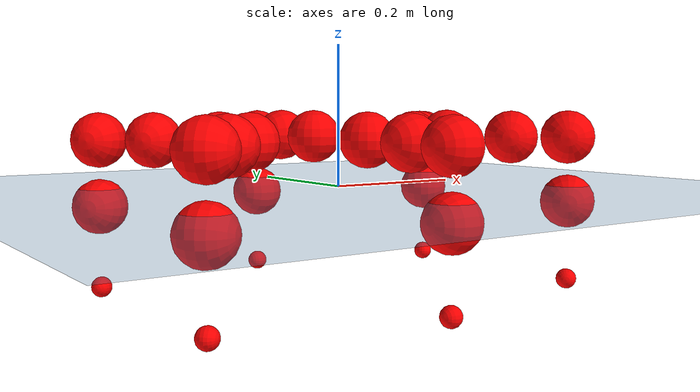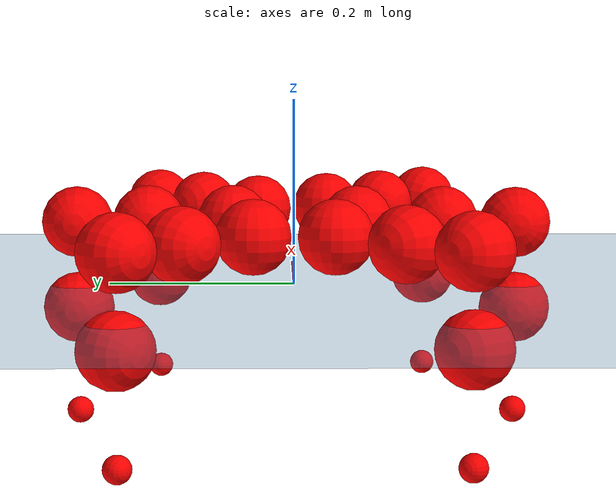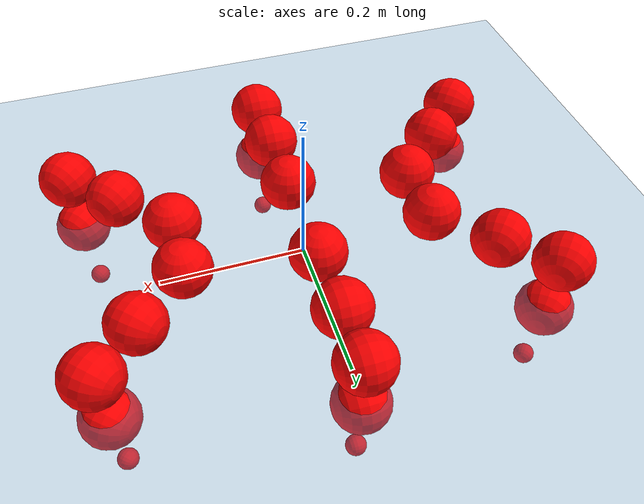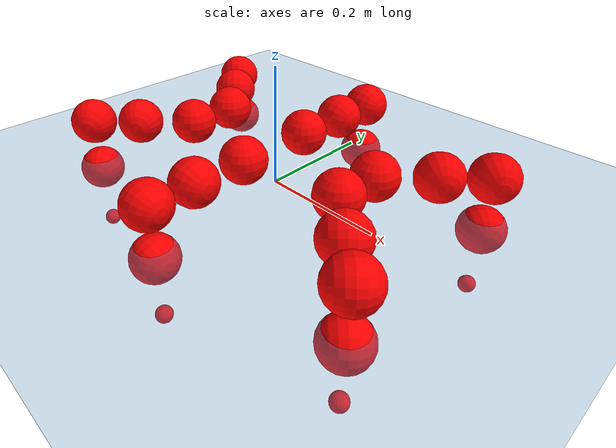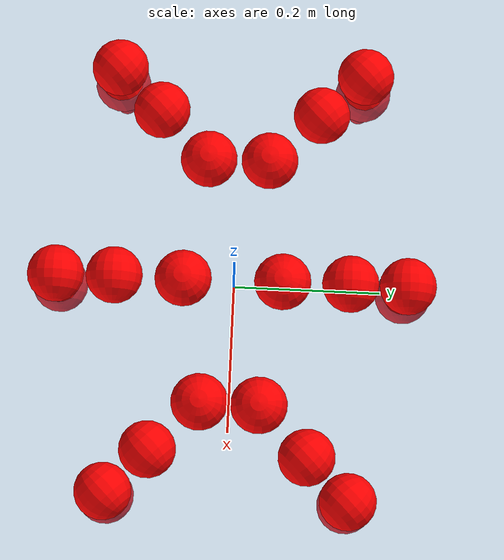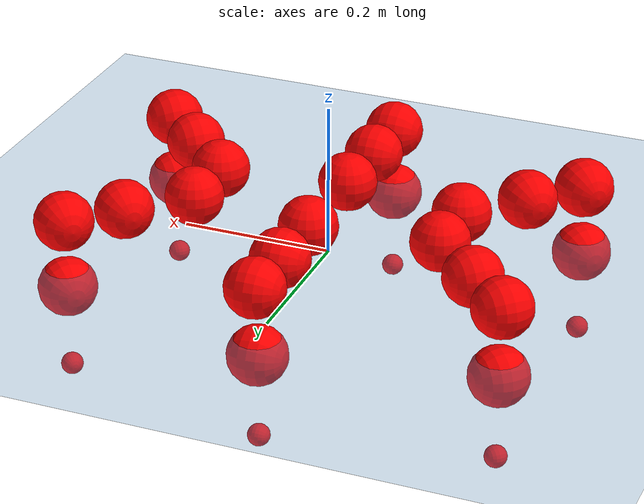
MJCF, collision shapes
<mujoco model="Golem">
  <compiler angle="radian" assetdir="assets" balanceinertia="true" inertiafromgeom="false"/>

  <option timestep="0.005" density="1.2" viscosity="2e-05"/>

  <size nkey="1"/>

  <visual>
    <quality shadowsize="8192"/>
    <map shadowclip="0.5"/>
  </visual>

  <default>
    <default class="/">
      <joint armature="0.01" damping="0.01" frictionloss="0.01"/>
      <geom contype="0" conaffinity="0" group="1" solref="-1000 -80"/>
      <site size="0.01 0.005 0.005" group="5"/>
      <general forcelimited="true" biastype="affine" gainprm="25" biasprm="0 -25 -0.5"/>
      <default class="visual">
        <geom type="mesh" group="2"/>
      </default>
      <default class="collision">
        <geom group="3"/>
      </default>
      <default class="foot">
        <geom size="0.01 0 0" condim="6" group="4" priority="1" solimp="0.015 1 0.01"/>
      </default>
      <default class="reward_collision_sphere">
        <geom group="5" rgba="1 0 0 1"/>
      </default>
    </default>
  </default>

  <asset>
    <texture type="skybox" colorspace="auto" name="//unnamed_texture_0" builtin="gradient" rgb1="0.95 0.95 0.95" rgb2="0.95 0.95 0.95" width="100" height="600"/>
    <texture type="2d" colorspace="auto" name="texplane" builtin="checker" rgb1="0.345 0.575 0.748" rgb2="0.345 0.575 0.748" markrgb="1 1 1" width="512" height="512"/>
    <material name="MatPlane" class="/" texture="texplane" texuniform="true" texrepeat="2 2" specular="0.9"/>
    <mesh name="body" class="/" file="body.stl" scale="0.001 0.001 0.001"/>
    <mesh name="coxa" class="/" file="coxa.stl" scale="0.001 0.001 0.001"/>
    <mesh name="femur" class="/" file="femur.stl" scale="0.001 0.001 0.001"/>
    <mesh name="tibia" class="/" file="tibia.stl" scale="0.001 0.001 0.001"/>
    <mesh name="tarsus" class="/" file="tarsus.stl" scale="0.001 0.001 0.001"/>
  </asset>

  <worldbody>
    <geom name="floor" class="/" size="100 100 0.125" type="plane" group="0" material="MatPlane"/>
    <light name="toplight_shadow" class="/" pos="0 0 5" dir="0.0990148 0.0990148 -0.990148" type="directional" ambient="0.04 0.04 0.04" diffuse="0.55 0.55 0.55" specular="0.12 0.12 0.12"/>
    <light name="toplight_fill" class="/" pos="0 0 5" dir="0.0990148 0.0990148 -0.990148" type="directional" castshadow="false" ambient="0.04 0.04 0.04" diffuse="0.3 0.3 0.3" specular="0.08 0.08 0.08"/>
    <body name="trunk" pos="0.00118468 -0.000791356 -0.000915538" quat="1 3.2345e-05 1.85653e-06 -9.27201e-06">
      <inertial pos="0.000351465 0.000143093 -0.00343246" quat="0.999999 2.08118e-05 0.000952623 -0.00129464" mass="3.20819" diaginertia="0.0130185 0.00222723 0.0147721"/>
      <joint name="//unnamed_joint_0" type="free"/>
      <geom name="//unnamed_geom_1" class="/" pos="0 0 0.0692768" quat="1 0 0 0" type="mesh" rgba="0.9 0.9 0.9 1" mesh="body"/>
      <site name="imu" class="/" pos="0.141256 0.00320088 0.106519" size="0.00960437"/>
      <camera name="track" class="/" pos="0 -1.48856 0" quat="0.707107 0.707107 0 0" mode="trackcom"/>
      <camera name="ego_camera" class="/" pos="0.137096 0 0.108245" quat="-0.5 -0.5 0.5 0.5"/>
      <body name="coxa_RR" pos="-0.187334 -0.0625585 0.0690228" quat="0.382739 0.000457075 -7.4827e-05 -0.923856">
        <inertial pos="-0.000195467 -0.00138018 0.00153894" quat="0.999999 -0.00031402 -0.000255568 -0.00163578" mass="0.174862" diaginertia="0.0131737 0.00230418 0.0149475"/>
        <joint name="coxa_joint_RR" class="/" pos="0 0 0" axis="0.00267201 -0.00596253 -0.999979" range="-3.13644 3.14172" armature="0.00943356" damping="0.00173966" frictionloss="0.00959525"/>
        <geom name="//unnamed_geom_2" class="/" type="mesh" rgba="0.2 0.2 0.2 1" mesh="coxa"/>
        <geom name="//unnamed_geom_3" class="reward_collision_sphere" size="0.0384175" pos="-0.0316374 0 0"/>
        <body name="femur_RR" pos="0.0619886 0.000919857 -6.41759e-05" quat="0.500181 -0.499983 0.499898 0.499939">
          <inertial pos="0.000984717 0.000714784 0.00023303" quat="0.999998 -0.000120093 -0.0020917 -2.79698e-05" mass="0.17772" diaginertia="0.013059 0.00228056 0.0152123"/>
          <joint name="femur_joint_RR" class="/" pos="0 0 0" axis="-0.00201851 0.00102249 -0.999997" range="-3.15121 3.14652" armature="0.00965058" damping="0" frictionloss="0.00976442"/>
          <geom name="//unnamed_geom_4" class="/" type="mesh" rgba="0.9 0.9 0.9 1" mesh="femur"/>
          <geom name="//unnamed_geom_5" class="reward_collision_sphere" size="0.0384175"/>
          <body name="tibia_RR" pos="0.000266749 -0.082265 0.00191612" quat="-3.4824e-05 1 -0.000237397 0.000522177">
            <inertial pos="-0.000521997 6.12929e-06 0.000258699" quat="0.999999 -0.000335379 0.00145429 -0.000354938" mass="0.17895" diaginertia="0.0131128 0.00231129 0.015131"/>
            <joint name="tibia_joint_RR" class="/" pos="0 0 0" axis="-0.00052134 -0.00124147 0.999999" range="-3.15824 3.12409" armature="0.00936405" damping="0.00252572" frictionloss="0.00958425"/>
            <geom name="//unnamed_geom_6" class="/" type="mesh" rgba="0.2 0.2 0.2 1" mesh="tibia"/>
            <geom name="//unnamed_geom_7" class="reward_collision_sphere" size="0.0384175"/>
            <body name="tarsus_RR" pos="0.0927748 0.000886333 0.000277163" quat="1 -0.000121432 -5.78154e-05 -5.88209e-05">
              <inertial pos="0.0651163 0.000369009 -0.00102204" quat="0.50002 0.499968 0.499844 0.500167" mass="0.177171" diaginertia="0.0129977 0.00225302 0.0147961"/>
              <joint name="tarsus_joint_RR" class="/" pos="0 0 0" axis="0.00838342 0.00406877 0.999957" stiffness="0.00282749" range="-3.14866 3.12616" armature="0.00968431" damping="0.0416118" frictionloss="0.0100671"/>
              <geom name="//unnamed_geom_8" class="/" type="mesh" rgba="0.9 0.9 0.9 1" mesh="tarsus"/>
              <geom name="foot_1" class="foot" size="0.00937729" pos="0.118113 0 0" quat="0 -0.707107 0 0.707107"/>
              <geom name="//unnamed_geom_10" class="reward_collision_sphere" size="0.0384175"/>
              <geom name="//unnamed_geom_11" class="reward_collision_sphere" size="0.0144066" pos="0.113367 0 0"/>
              <site name="foot_1" class="foot" pos="0.118113 0 0" quat="0 -0.707107 0 0.707107" size="0.00960437"/>
            </body>
          </body>
        </body>
      </body>
      <body name="coxa_RM" pos="-3.21239e-05 -0.0994174 0.0691475" quat="0.707305 -1.148e-05 0.00017297 -0.706908">
        <inertial pos="-4.2978e-05 8.25212e-05 0.00161112" quat="0.999989 0.0030262 -0.000431329 0.00364769" mass="0.179578" diaginertia="0.0132195 0.00225021 0.0147934"/>
        <joint name="coxa_joint_RM" class="/" pos="0 0 0" axis="0.00237382 0.00292591 -0.999993" range="-3.12276 3.14708" armature="0.00945429" damping="0.00842818" frictionloss="0.00875751"/>
        <geom name="//unnamed_geom_12" class="/" type="mesh" rgba="0.2 0.2 0.2 1" mesh="coxa"/>
        <geom name="//unnamed_geom_13" class="reward_collision_sphere" size="0.0384175" pos="-0.0316374 0 0"/>
        <body name="femur_RM" pos="0.0611404 -0.000333269 -0.000380522" quat="0.499602 -0.500151 0.500266 0.49998">
          <inertial pos="9.69521e-05 0.000692395 2.30432e-05" quat="0.999994 -0.00203906 -0.00209437 -0.00169701" mass="0.18104" diaginertia="0.0132724 0.00231919 0.0151634"/>
          <joint name="femur_joint_RM" class="/" pos="0 0 0" axis="0.00412499 -0.00156218 -0.99999" range="-3.13509 3.14156" armature="0.010072" damping="0.00917932" frictionloss="0.00960667"/>
          <geom name="//unnamed_geom_14" class="/" type="mesh" rgba="0.9 0.9 0.9 1" mesh="femur"/>
          <geom name="//unnamed_geom_15" class="reward_collision_sphere" size="0.0384175"/>
          <body name="tibia_RM" pos="0.00104761 -0.0789137 0.000759063" quat="8.84899e-05 1 -1.06349e-06 -0.000146179">
            <inertial pos="-0.000381192 -0.00152536 -0.00035536" quat="0.999994 -0.00347467 0.000886357 -0.000299065" mass="0.177493" diaginertia="0.0131795 0.00234782 0.0149024"/>
            <joint name="tibia_joint_RM" class="/" pos="0 0 0" axis="-0.000192565 3.07193e-05 1" range="-3.15432 3.17374" armature="0.00960157" damping="0.0118733" frictionloss="0.00966404"/>
            <geom name="//unnamed_geom_16" class="/" type="mesh" rgba="0.2 0.2 0.2 1" mesh="tibia"/>
            <geom name="//unnamed_geom_17" class="reward_collision_sphere" size="0.0384175"/>
            <body name="tarsus_RM" pos="0.0927599 0.000156394 1.17884e-05" quat="1 2.11604e-05 2.71039e-05 -2.27858e-05">
              <inertial pos="0.0632707 0.000928559 0.000207386" quat="0.503514 0.497982 0.502807 0.495654" mass="0.179757" diaginertia="0.0129228 0.00230267 0.0148292"/>
              <joint name="tarsus_joint_RM" class="/" pos="0 0 0" axis="-0.000186817 0.000931901 1" range="-3.15211 3.14307" armature="0.0091485" damping="0.00744596" frictionloss="0.00953568"/>
              <geom name="//unnamed_geom_18" class="/" type="mesh" rgba="0.9 0.9 0.9 1" mesh="tarsus"/>
              <geom name="foot_2" class="foot" size="0.00955972" pos="0.118113 0 0" quat="0 -0.707107 0 0.707107"/>
              <geom name="//unnamed_geom_20" class="reward_collision_sphere" size="0.0384175"/>
              <geom name="//unnamed_geom_21" class="reward_collision_sphere" size="0.0144066" pos="0.113367 0 0"/>
              <site name="foot_2" class="foot" pos="0.118113 0 0" quat="0 -0.707107 0 0.707107" size="0.00960437"/>
            </body>
          </body>
        </body>
      </body>
      <body name="coxa_RF" pos="0.188253 -0.060709 0.0707697" quat="0.923766 -0.000115793 -3.28955e-05 -0.382958">
        <inertial pos="0.000515587 -0.000959693 -0.00028284" quat="1 -0.000435836 -0.000180115 6.72211e-05" mass="0.178543" diaginertia="0.0130455 0.00227723 0.0151223"/>
        <joint name="coxa_joint_RF" class="/" pos="0 0 0" axis="0.0028664 -0.00200646 -0.999994" range="-3.14544 3.13823" armature="0.00979765" damping="0.0143413" frictionloss="0.00959512"/>
        <geom name="//unnamed_geom_22" class="/" type="mesh" rgba="0.2 0.2 0.2 1" mesh="coxa"/>
        <geom name="//unnamed_geom_23" class="reward_collision_sphere" size="0.0384175" pos="-0.0316374 0 0"/>
        <body name="femur_RF" pos="0.0619359 -0.00011548 -0.00149539" quat="0.499907 -0.499839 0.500099 0.500156">
          <inertial pos="-0.000738386 0.000379584 -0.000363836" quat="0.999989 -0.00408957 0.00127806 0.00163379" mass="0.179501" diaginertia="0.0130417 0.00233248 0.0152131"/>
          <joint name="femur_joint_RF" class="/" pos="0 0 0" axis="-0.000157584 0.000527786 -1" range="-3.16536 3.12877" armature="0.00935403" damping="0.0104816" frictionloss="0.00960918"/>
          <geom name="//unnamed_geom_24" class="/" type="mesh" rgba="0.9 0.9 0.9 1" mesh="femur"/>
          <geom name="//unnamed_geom_25" class="reward_collision_sphere" size="0.0384175"/>
          <body name="tibia_RF" pos="-0.000572878 -0.0804503 0.00121927" quat="0.000103326 1 1.24886e-05 -1.12365e-05">
            <inertial pos="-0.0014211 0.000489737 -0.000178494" quat="1 -1.9343e-07 6.22174e-05 -0.000431222" mass="0.179785" diaginertia="0.0132115 0.00227116 0.0148881"/>
            <joint name="tibia_joint_RF" class="/" pos="0 0 0" axis="0.002687 0.00422063 0.999987" range="-3.13755 3.11077" armature="0.00992002" damping="0.00984995" frictionloss="0.00960503"/>
            <geom name="//unnamed_geom_26" class="/" type="mesh" rgba="0.2 0.2 0.2 1" mesh="tibia"/>
            <geom name="//unnamed_geom_27" class="reward_collision_sphere" size="0.0384175"/>
            <body name="tarsus_RF" pos="0.0928266 0.00080051 0.0007742" quat="1 0.000225992 0.000232652 0.000499347">
              <inertial pos="0.0631708 0.000427057 -0.000108012" quat="0.501061 0.498949 0.499879 0.500109" mass="0.176425" diaginertia="0.0130997 0.00227227 0.0146918"/>
              <joint name="tarsus_joint_RF" class="/" pos="0 0 0" axis="-2.63024e-05 0.000354493 1" range="-3.12288 3.13822" armature="0.00922931" damping="0" frictionloss="0.0100609"/>
              <geom name="//unnamed_geom_28" class="/" type="mesh" rgba="0.9 0.9 0.9 1" mesh="tarsus"/>
              <geom name="foot_3" class="foot" size="0.00953221" pos="0.118113 0 0" quat="0 -0.707107 0 0.707107"/>
              <geom name="//unnamed_geom_30" class="reward_collision_sphere" size="0.0384175"/>
              <geom name="//unnamed_geom_31" class="reward_collision_sphere" size="0.0144066" pos="0.113367 0 0"/>
              <site name="foot_3" class="foot" pos="0.118113 0 0" quat="0 -0.707107 0 0.707107" size="0.00960437"/>
            </body>
          </body>
        </body>
      </body>
      <body name="coxa_LR" pos="-0.188377 0.0645816 0.0691837" quat="0.382692 -2.9437e-06 3.73988e-06 0.923876">
        <inertial pos="-0.000819853 -0.00116995 -0.00100926" quat="0.999977 -0.000349304 0.00386156 -0.00558814" mass="0.177621" diaginertia="0.0129483 0.00232511 0.0147175"/>
        <joint name="coxa_joint_LR" class="/" pos="0 0 0" axis="0.00746879 0.00442644 -0.999962" range="-3.13463 3.15688" armature="0.00999168" damping="0.0117447" frictionloss="0.00953392"/>
        <geom name="//unnamed_geom_32" class="/" type="mesh" rgba="0.2 0.2 0.2 1" mesh="coxa"/>
        <geom name="//unnamed_geom_33" class="reward_collision_sphere" size="0.0384175" pos="-0.0316374 0 0"/>
        <body name="femur_LR" pos="0.0633625 -0.00148516 -0.0010795" quat="0.500007 -0.499992 0.500058 0.499944">
          <inertial pos="0.000592701 0.000120723 -0.000134078" quat="0.99999 0.00292613 -0.00278424 -0.00182298" mass="0.177023" diaginertia="0.0130282 0.00228244 0.014798"/>
          <joint name="femur_joint_LR" class="/" pos="0 0 0" axis="-0.00169308 0.00119646 0.999998" range="-3.14695 3.13892" armature="0.00974397" damping="0.00959394" frictionloss="0.00887411"/>
          <geom name="//unnamed_geom_34" class="/" type="mesh" rgba="0.9 0.9 0.9 1" mesh="femur"/>
          <geom name="//unnamed_geom_35" class="reward_collision_sphere" size="0.0384175"/>
          <body name="tibia_LR" pos="0.000441306 -0.0809679 -0.000984577" quat="0.000352615 1 0.000234385 -0.000187326">
            <inertial pos="-0.000275813 -5.54968e-05 0.000150615" quat="0.999997 -0.00104656 -0.000663421 0.00217854" mass="0.173875" diaginertia="0.0128564 0.00226483 0.0146001"/>
            <joint name="tibia_joint_LR" class="/" pos="0 0 0" axis="0.00207273 0.00623932 -0.999978" range="-3.12064 3.13666" armature="0.00955024" damping="0.00663875" frictionloss="0.00963849"/>
            <geom name="//unnamed_geom_36" class="/" type="mesh" rgba="0.2 0.2 0.2 1" mesh="tibia"/>
            <geom name="//unnamed_geom_37" class="reward_collision_sphere" size="0.0384175"/>
            <body name="tarsus_LR" pos="0.0927915 0.000313238 0.0015363" quat="1 -4.24404e-05 2.60861e-05 -0.000612481">
              <inertial pos="0.0654034 0.000158108 -0.00134083" quat="0.500807 0.499499 0.499539 0.500154" mass="0.177453" diaginertia="0.0129929 0.00227633 0.0147538"/>
              <joint name="tarsus_joint_LR" class="/" pos="0 0 0" axis="1.07893e-06 9.74561e-06 -1" range="-3.14688 3.13065" armature="0.00974684" damping="0.00141524" frictionloss="0.00928301"/>
              <geom name="//unnamed_geom_38" class="/" type="mesh" rgba="0.9 0.9 0.9 1" mesh="tarsus"/>
              <geom name="foot_4" class="foot" size="0.00915553" pos="0.118113 0 0" quat="0.707107 0 -0.707107 0"/>
              <geom name="//unnamed_geom_40" class="reward_collision_sphere" size="0.0384175"/>
              <geom name="//unnamed_geom_41" class="reward_collision_sphere" size="0.0144066" pos="0.113367 0 0"/>
              <site name="foot_4" class="foot" pos="0.118113 0 0" quat="0.707107 0 -0.707107 0" size="0.00960437"/>
            </body>
          </body>
        </body>
      </body>
      <body name="coxa_LM" pos="-0.000602383 0.0978012 0.069976" quat="0.706997 0.000255736 0.000137478 0.707216">
        <inertial pos="1.57809e-05 0.000714781 0.00105941" quat="0.999995 -0.000774416 0.00155834 -0.00252699" mass="0.178614" diaginertia="0.0133062 0.002318 0.0149914"/>
        <joint name="coxa_joint_LM" class="/" pos="0 0 0" axis="0.00100398 0.00086595 -0.999999" range="-3.13144 3.13831" armature="0.00914745" damping="0.00665321" frictionloss="0.00965901"/>
        <geom name="//unnamed_geom_42" class="/" type="mesh" rgba="0.2 0.2 0.2 1" mesh="coxa"/>
        <geom name="//unnamed_geom_43" class="reward_collision_sphere" size="0.0384175" pos="-0.0316374 0 0"/>
        <body name="femur_LM" pos="0.0597382 0.000851412 -0.000119969" quat="0.500032 -0.500109 0.499716 0.500143">
          <inertial pos="-0.00108471 -0.000529185 0.00159277" quat="0.999983 -0.00458088 0.00127687 0.00327951" mass="0.176665" diaginertia="0.0128613 0.00222918 0.0146828"/>
          <joint name="femur_joint_LM" class="/" pos="0 0 0" axis="0.000145503 -0.000433331 1" range="-3.1401 3.13591" armature="0.00923551" damping="0.00320953" frictionloss="0.00965551"/>
          <geom name="//unnamed_geom_44" class="/" type="mesh" rgba="0.9 0.9 0.9 1" mesh="femur"/>
          <geom name="//unnamed_geom_45" class="reward_collision_sphere" size="0.0384175"/>
          <body name="tibia_LM" pos="0.00120002 -0.0772583 0.000159197" quat="0.000597559 1 0.000552893 0.000277588">
            <inertial pos="0.000208982 -0.00229155 -0.000615949" quat="0.999996 0.000213104 0.00211782 -0.00181643" mass="0.178787" diaginertia="0.0129451 0.00230517 0.0147511"/>
            <joint name="tibia_joint_LM" class="/" pos="0 0 0" axis="-0.000655269 0.000398432 -1" range="-3.13603 3.13119" armature="0.00995961" damping="0" frictionloss="0.0100472"/>
            <geom name="//unnamed_geom_46" class="/" type="mesh" rgba="0.2 0.2 0.2 1" mesh="tibia"/>
            <geom name="//unnamed_geom_47" class="reward_collision_sphere" size="0.0384175"/>
            <body name="tarsus_LM" pos="0.0929477 -0.00079021 -0.00138757" quat="1 -0.00014476 -0.000724374 0.000376683">
              <inertial pos="0.0640311 0.000498176 0.000857164" quat="0.500153 0.500082 0.499963 0.499803" mass="0.172715" diaginertia="0.0129241 0.0022333 0.0145382"/>
              <joint name="tarsus_joint_LM" class="/" pos="0 0 0" axis="0.00210586 -0.00109607 -0.999997" stiffness="0.00103288" range="-3.10793 3.13878" armature="0.00995943" damping="0" frictionloss="0.00919305"/>
              <geom name="//unnamed_geom_48" class="/" type="mesh" rgba="0.9 0.9 0.9 1" mesh="tarsus"/>
              <geom name="foot_5" class="foot" size="0.00934596" pos="0.118113 0 0" quat="0.707107 0 -0.707107 0"/>
              <geom name="//unnamed_geom_50" class="reward_collision_sphere" size="0.0384175"/>
              <geom name="//unnamed_geom_51" class="reward_collision_sphere" size="0.0144066" pos="0.113367 0 0"/>
              <site name="foot_5" class="foot" pos="0.118113 0 0" quat="0.707107 0 -0.707107 0" size="0.00960437"/>
            </body>
          </body>
        </body>
      </body>
      <body name="coxa_LF" pos="0.189197 0.0635733 0.0679513" quat="0.923869 6.91904e-05 1.31653e-05 0.38271">
        <inertial pos="0.000252068 6.83595e-05 0.00116187" quat="0.999998 0.000507936 -0.000367156 -0.00198345" mass="0.176148" diaginertia="0.0128142 0.0022511 0.0145251"/>
        <joint name="coxa_joint_LF" class="/" pos="0 0 0" axis="0.0021868 0.00363772 -0.999991" range="-3.11941 3.16834" armature="0.00992232" damping="0.000473898" frictionloss="0.00984723"/>
        <geom name="//unnamed_geom_52" class="/" type="mesh" rgba="0.2 0.2 0.2 1" mesh="coxa"/>
        <geom name="//unnamed_geom_53" class="reward_collision_sphere" size="0.0384175" pos="-0.0316374 0 0"/>
        <body name="femur_LF" pos="0.0623769 -0.000502703 -0.000369871" quat="0.499851 -0.500273 0.499599 0.500277">
          <inertial pos="0.00141497 -0.00032108 -0.00020558" quat="1 0.000246073 -0.000636957 -0.000173676" mass="0.17686" diaginertia="0.0130867 0.00229258 0.0150314"/>
          <joint name="femur_joint_LF" class="/" pos="0 0 0" axis="-0.00148472 -0.00404197 0.999991" range="-3.15329 3.146" armature="0.00985198" damping="0.00144185" frictionloss="0.00962008"/>
          <geom name="//unnamed_geom_54" class="/" type="mesh" rgba="0.9 0.9 0.9 1" mesh="femur"/>
          <geom name="//unnamed_geom_55" class="reward_collision_sphere" size="0.0384175"/>
          <body name="tibia_LF" pos="0.00102989 -0.0797385 0.000176678" quat="0.000201091 1 -1.29769e-05 -0.000152812">
            <inertial pos="-0.000128912 -2.02436e-05 -0.000928082" quat="0.999999 0.000946612 -0.000176632 -0.000883073" mass="0.179164" diaginertia="0.0130837 0.00228568 0.014819"/>
            <joint name="tibia_joint_LF" class="/" pos="0 0 0" axis="-0.000160789 -0.00128351 -0.999999" range="-3.14044 3.14096" armature="0.00997773" damping="0.00169482" frictionloss="0.00914805"/>
            <geom name="//unnamed_geom_56" class="/" type="mesh" rgba="0.2 0.2 0.2 1" mesh="tibia"/>
            <geom name="//unnamed_geom_57" class="reward_collision_sphere" size="0.0384175"/>
            <body name="tarsus_LF" pos="0.0924551 -0.000179561 -0.000640906" quat="1 3.61309e-05 -0.00051898 -0.000175032">
              <inertial pos="0.0633823 0.000314284 0.00104796" quat="0.499536 0.500802 0.499179 0.500482" mass="0.174614" diaginertia="0.0130142 0.00228053 0.0146368"/>
              <joint name="tarsus_joint_LF" class="/" pos="0 0 0" axis="0.00601036 -0.000268611 -0.999982" stiffness="0.0279516" range="-3.1379 3.11784" armature="0.00961814" damping="0.0266712" frictionloss="0.00957777"/>
              <geom name="//unnamed_geom_58" class="/" type="mesh" rgba="0.9 0.9 0.9 1" mesh="tarsus"/>
              <geom name="foot_6" class="foot" size="0.00965294" pos="0.118113 0 0" quat="0.707107 0 -0.707107 0"/>
              <geom name="//unnamed_geom_60" class="reward_collision_sphere" size="0.0384175"/>
              <geom name="//unnamed_geom_61" class="reward_collision_sphere" size="0.0144066" pos="0.113367 0 0"/>
              <site name="foot_6" class="foot" pos="0.118113 0 0" quat="0.707107 0 -0.707107 0" size="0.00960437"/>
            </body>
          </body>
        </body>
      </body>
    </body>
  </worldbody>

  <contact>
    <pair class="/" geom1="floor" geom2="foot_1" name="//unnamed_contact_0"/>
    <pair class="/" geom1="floor" geom2="foot_2" name="//unnamed_contact_1"/>
    <pair class="/" geom1="floor" geom2="foot_3" name="//unnamed_contact_2"/>
    <pair class="/" geom1="floor" geom2="foot_4" name="//unnamed_contact_3"/>
    <pair class="/" geom1="floor" geom2="foot_5" name="//unnamed_contact_4"/>
    <pair class="/" geom1="floor" geom2="foot_6" name="//unnamed_contact_5"/>
  </contact>

  <actuator>
    <general name="coxa_joint_RR" class="/" joint="coxa_joint_RR" forcerange="-7.11272 7.11272" gainprm="23.1476" biasprm="0 -23.1476 -0.498605"/>
    <general name="femur_joint_RR" class="/" joint="femur_joint_RR" forcerange="-7.01343 7.01343" gainprm="23.1476" biasprm="0 -23.1476 -0.498605"/>
    <general name="tibia_joint_RR" class="/" joint="tibia_joint_RR" forcerange="-7.07047 7.07047" gainprm="23.1476" biasprm="0 -23.1476 -0.498605"/>
    <general name="tarsus_joint_RR" class="/" joint="tarsus_joint_RR" forcerange="-6.99174 6.99174" gainprm="23.1476" biasprm="0 -23.1476 -0.498605"/>
    <general name="coxa_joint_RM" class="/" joint="coxa_joint_RM" forcerange="-6.65522 6.65522" gainprm="23.1476" biasprm="0 -23.1476 -0.498605"/>
    <general name="femur_joint_RM" class="/" joint="femur_joint_RM" forcerange="-6.92798 6.92798" gainprm="23.1476" biasprm="0 -23.1476 -0.498605"/>
    <general name="tibia_joint_RM" class="/" joint="tibia_joint_RM" forcerange="-7.20039 7.20039" gainprm="23.1476" biasprm="0 -23.1476 -0.498605"/>
    <general name="tarsus_joint_RM" class="/" joint="tarsus_joint_RM" forcerange="-7.08902 7.08902" gainprm="23.1476" biasprm="0 -23.1476 -0.498605"/>
    <general name="coxa_joint_RF" class="/" joint="coxa_joint_RF" forcerange="-6.73673 6.73673" gainprm="23.1476" biasprm="0 -23.1476 -0.498605"/>
    <general name="femur_joint_RF" class="/" joint="femur_joint_RF" forcerange="-7.24835 7.24835" gainprm="23.1476" biasprm="0 -23.1476 -0.498605"/>
    <general name="tibia_joint_RF" class="/" joint="tibia_joint_RF" forcerange="-6.60855 6.60855" gainprm="23.1476" biasprm="0 -23.1476 -0.498605"/>
    <general name="tarsus_joint_RF" class="/" joint="tarsus_joint_RF" forcerange="-6.76402 6.76402" gainprm="23.1476" biasprm="0 -23.1476 -0.498605"/>
    <general name="coxa_joint_LR" class="/" joint="coxa_joint_LR" forcerange="-7.0289 7.0289" gainprm="23.1476" biasprm="0 -23.1476 -0.498605"/>
    <general name="femur_joint_LR" class="/" joint="femur_joint_LR" forcerange="-6.94228 6.94228" gainprm="23.1476" biasprm="0 -23.1476 -0.498605"/>
    <general name="tibia_joint_LR" class="/" joint="tibia_joint_LR" forcerange="-7.08676 7.08676" gainprm="23.1476" biasprm="0 -23.1476 -0.498605"/>
    <general name="tarsus_joint_LR" class="/" joint="tarsus_joint_LR" forcerange="-6.83455 6.83455" gainprm="23.1476" biasprm="0 -23.1476 -0.498605"/>
    <general name="coxa_joint_LM" class="/" joint="coxa_joint_LM" forcerange="-7.08869 7.08869" gainprm="23.1476" biasprm="0 -23.1476 -0.498605"/>
    <general name="femur_joint_LM" class="/" joint="femur_joint_LM" forcerange="-7.0234 7.0234" gainprm="23.1476" biasprm="0 -23.1476 -0.498605"/>
    <general name="tibia_joint_LM" class="/" joint="tibia_joint_LM" forcerange="-6.95657 6.95657" gainprm="23.1476" biasprm="0 -23.1476 -0.498605"/>
    <general name="tarsus_joint_LM" class="/" joint="tarsus_joint_LM" forcerange="-6.94776 6.94776" gainprm="23.1476" biasprm="0 -23.1476 -0.498605"/>
    <general name="coxa_joint_LF" class="/" joint="coxa_joint_LF" forcerange="-6.58101 6.58101" gainprm="23.1476" biasprm="0 -23.1476 -0.498605"/>
    <general name="femur_joint_LF" class="/" joint="femur_joint_LF" forcerange="-6.96047 6.96047" gainprm="23.1476" biasprm="0 -23.1476 -0.498605"/>
    <general name="tibia_joint_LF" class="/" joint="tibia_joint_LF" forcerange="-7.05874 7.05874" gainprm="23.1476" biasprm="0 -23.1476 -0.498605"/>
    <general name="tarsus_joint_LF" class="/" joint="tarsus_joint_LF" forcerange="-7.24269 7.24269" gainprm="23.1476" biasprm="0 -23.1476 -0.498605"/>
  </actuator>

  <sensor>
    <gyro site="imu" name="imu_angular_velocity"/>
    <velocimeter site="imu" name="imu_linear_velocity"/>
    <framelinvel objtype="site" objname="foot_1" name="foot_1_global_linear_velocity"/>
    <framelinvel objtype="site" objname="foot_2" name="foot_2_global_linear_velocity"/>
    <framelinvel objtype="site" objname="foot_3" name="foot_3_global_linear_velocity"/>
    <framelinvel objtype="site" objname="foot_4" name="foot_4_global_linear_velocity"/>
    <framelinvel objtype="site" objname="foot_5" name="foot_5_global_linear_velocity"/>
    <framelinvel objtype="site" objname="foot_6" name="foot_6_global_linear_velocity"/>
  </sensor>

  <keyframe>
    <key name="home" qpos="0 0 0.1457 1 0 0 0 0 0 0 0 0 0 0 0 0 0 0 0 0 0 0 0 0 0 0 0 0 0 0 0"/>
  </keyframe>
</mujoco>
